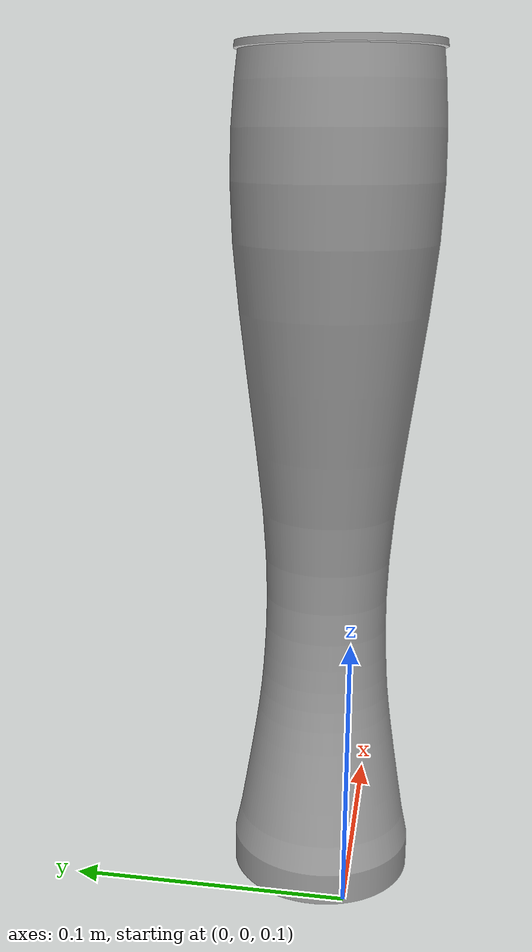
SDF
<?xml version='1.0'?>

<sdf version='1.4'>
	<model name="beer_mug">

			<link name="base">
			<pose>0 0 .1 0 0 0</pose>
				<visual name="visual">
					<geometry>
						<mesh>
							<uri>model://beer_mug/meshes/beer_mug.dae</uri>
						</mesh>
					</geometry>
				</visual>

				<collision name="collision">
					<geometry>
						<mesh>
							<uri>model://beer_mug/meshes/beer_mug.dae</uri>
						</mesh>
					</geometry>
				</collision>

			<inertial>
        		<pose>0 0 0 0 0 0</pose>
        		<mass>0.1</mass>
      		</inertial>

      		</link>
	</model>
</sdf>
